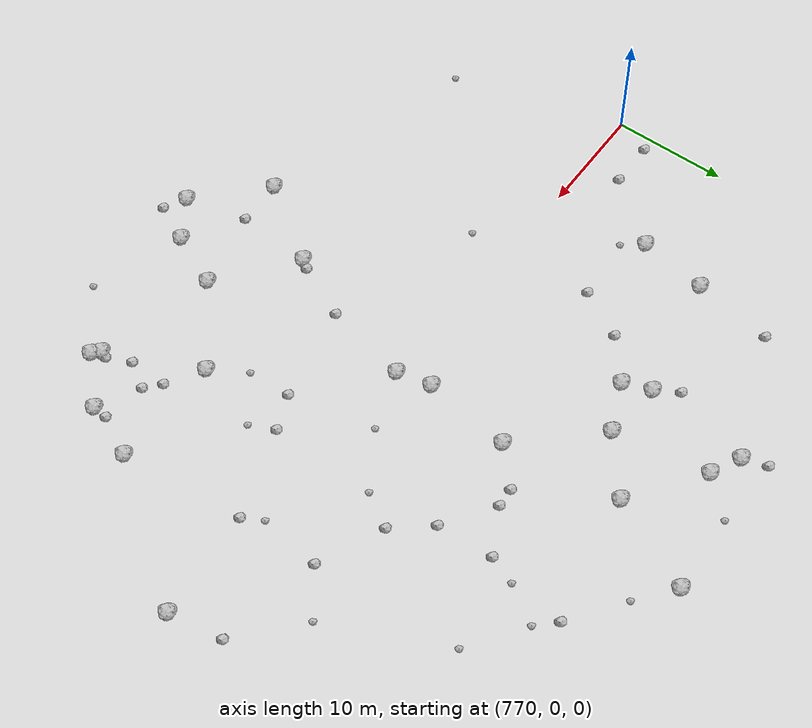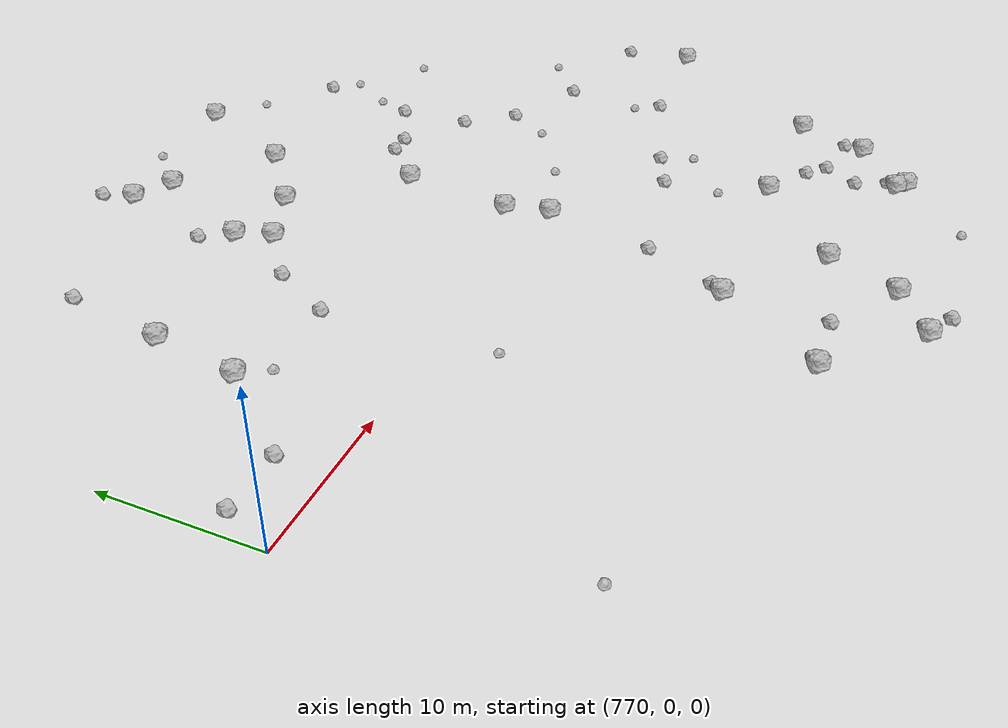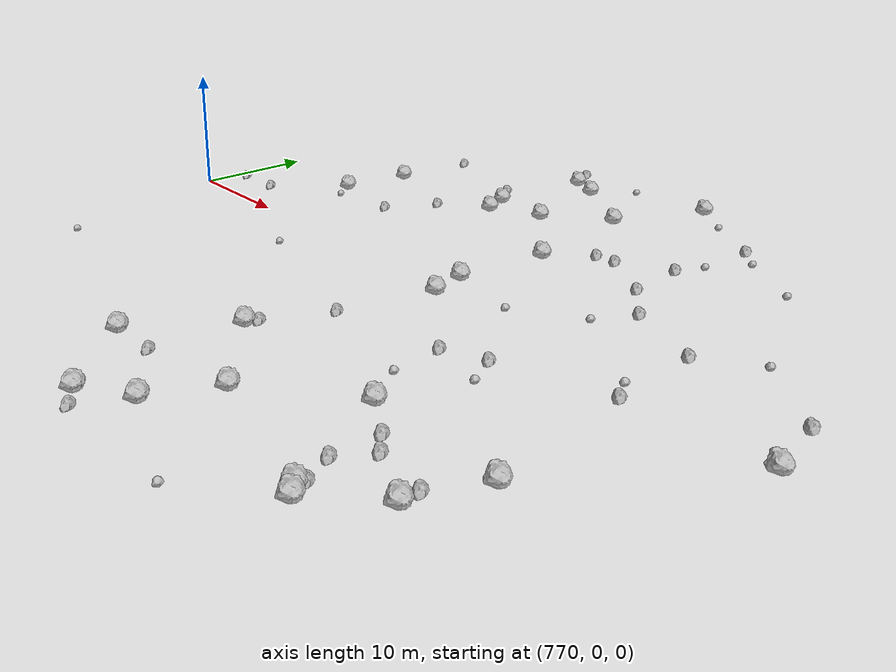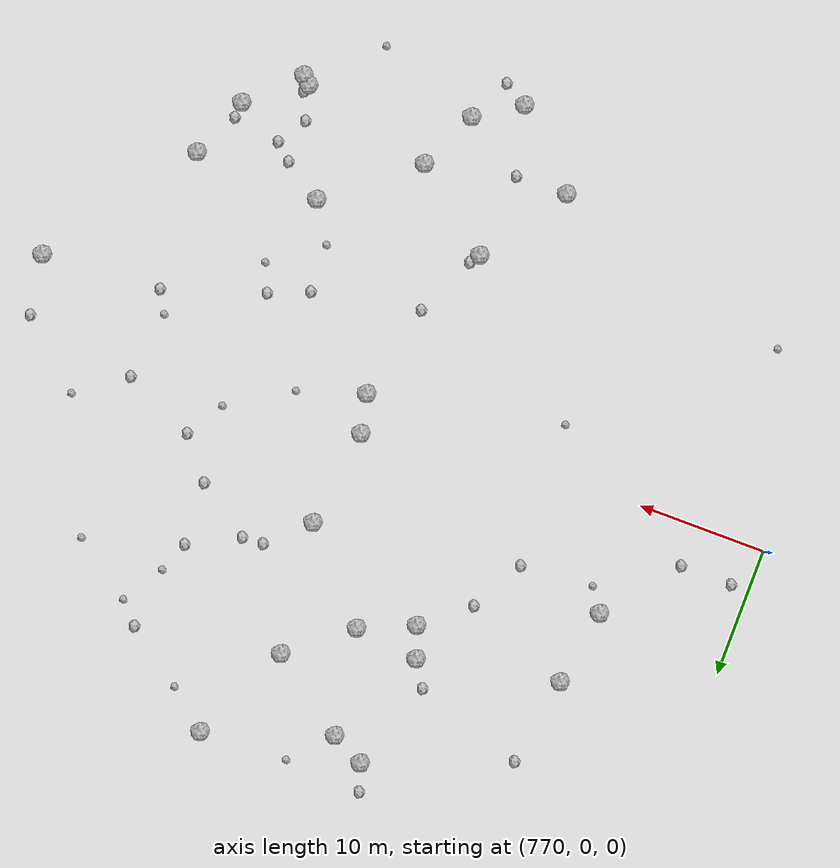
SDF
<sdf version="1.6">
 <world name="default">
  <include><uri>model://sun</uri></include>
  <model name="rock1_20_4">
   <include><uri>model://rock1</uri><pose>804.6834577866366 -18.773751615874275 0.5 0 0 0</pose></include>
  </model>
  <model name="rock1_20_5">
   <include><uri>model://rock1</uri><pose>829.6661264970816 -2.0396495676799873 0.5 0 0 0</pose></include>
  </model>
  <model name="rock1_20_6">
   <include><uri>model://rock1</uri><pose>799.0659258519454 -25.673178816625576 0.5 0 0 0</pose></include>
  </model>
  <model name="rock1_20_7">
   <include><uri>model://rock1</uri><pose>821.309565629324 -13.532190341056864 0.5 0 0 0</pose></include>
  </model>
  <model name="rock1_20_8">
   <include><uri>model://rock1</uri><pose>815.7203400717975 -21.910297261177405 0.5 0 0 0</pose></include>
  </model>
  <model name="rock1_20_9">
   <include><uri>model://rock1</uri><pose>802.6692119826708 -0.7370489539729661 0.5 0 0 0</pose></include>
  </model>
  <model name="rock1_20_10">
   <include><uri>model://rock1</uri><pose>801.8707717566934 20.174610828666076 0.5 0 0 0</pose></include>
  </model>
  <model name="rock1_20_11">
   <include><uri>model://rock1</uri><pose>797.1212844290983 16.324149091104303 0.5 0 0 0</pose></include>
  </model>
  <model name="rock1_20_12">
   <include><uri>model://rock1</uri><pose>792.8939052407616 14.519052524050437 0.5 0 0 0</pose></include>
  </model>
  <model name="rock1_20_13">
   <include><uri>model://rock1</uri><pose>803.0680856077391 9.930681445856692 0.5 0 0 0</pose></include>
  </model>
  <model name="rock1_20_14">
   <include><uri>model://rock1</uri><pose>802.5493420177905 -23.402302325145858 0.5 0 0 0</pose></include>
  </model>
  <model name="rock1_20_15">
   <include><uri>model://rock1</uri><pose>792.0458171632778 16.918782738709652 0.5 0 0 0</pose></include>
  </model>
  <model name="rock1_20_16">
   <include><uri>model://rock1</uri><pose>819.4363010921661 -18.283634922611785 0.5 0 0 0</pose></include>
  </model>
  <model name="rock1_20_17">
   <include><uri>model://rock1</uri><pose>802.0224335503791 2.2782151435221465 0.5 0 0 0</pose></include>
  </model>
  <model name="rock1_20_18">
   <include><uri>model://rock1</uri><pose>793.2656742923607 25.87179105667542 0.5 0 0 0</pose></include>
  </model>
  <model name="rock1_20_19">
   <include><uri>model://rock1</uri><pose>781.1190762183788 14.721899369333755 0.5 0 0 0</pose></include>
  </model>
  <model name="rock1_20_20">
   <include><uri>model://rock1</uri><pose>795.8185098307016 24.5844817443187 0.5 0 0 0</pose></include>
  </model>
  <model name="rock1_20_21">
   <include><uri>model://rock1</uri><pose>780.1209382874182 8.761530990640921 0.5 0 0 0</pose></include>
  </model>
  <model name="rock1_20_22">
   <include><uri>model://rock1</uri><pose>815.1034418775888 -21.314280976405072 0.5 0 0 0</pose></include>
  </model>
  <model name="rock1_20_23">
   <include><uri>model://rock1</uri><pose>793.6647525481793 -20.417212143853156 0.5 0 0 0</pose></include>
  </model>
  <model name="rock1_20_24">
   <include><uri>model://rock1</uri><pose>798.2601895823869 -13.688111562057557 0.5 0 0 0</pose></include>
  </model>
  <model name="rock1_20_25">
   <include><uri>model://rock1</uri><pose>811.4522131542992 -13.332338221070053 0.5 0 0 0</pose></include>
  </model>
  <model name="rock1_20_26">
   <include><uri>model://rock1</uri><pose>805.5595508074398 27.901159760408603 0.5 0 0 0</pose></include>
  </model>
  <model name="rock2_20_0">
   <include><uri>model://rock2</uri><pose>775.4983737985233 3.21960689254815 0.3 0 0 0</pose></include>
  </model>
  <model name="rock2_20_1">
   <include><uri>model://rock2</uri><pose>806.0495666579076 12.816058044095243 0.3 0 0 0</pose></include>
  </model>
  <model name="rock2_20_2">
   <include><uri>model://rock2</uri><pose>807.7063881100781 12.911575883591134 0.3 0 0 0</pose></include>
  </model>
  <model name="rock2_20_3">
   <include><uri>model://rock2</uri><pose>798.7638083124771 -12.87067484473161 0.3 0 0 0</pose></include>
  </model>
  <model name="rock2_20_4">
   <include><uri>model://rock2</uri><pose>787.0016669692776 7.4998253911099795 0.3 0 0 0</pose></include>
  </model>
  <model name="rock2_20_5">
   <include><uri>model://rock2</uri><pose>789.2805718306511 11.62691013585684 0.3 0 0 0</pose></include>
  </model>
  <model name="rock2_20_6">
   <include><uri>model://rock2</uri><pose>800.8977755769233 -26.739715902159272 0.3 0 0 0</pose></include>
  </model>
  <model name="rock2_20_7">
   <include><uri>model://rock2</uri><pose>812.4626460381271 -5.256388854769405 0.3 0 0 0</pose></include>
  </model>
  <model name="rock2_20_8">
   <include><uri>model://rock2</uri><pose>797.7226252933996 -20.30496148696861 0.3 0 0 0</pose></include>
  </model>
  <model name="rock2_20_9">
   <include><uri>model://rock2</uri><pose>814.463958219929 -15.268576897051734 0.3 0 0 0</pose></include>
  </model>
  <model name="rock2_20_10">
   <include><uri>model://rock2</uri><pose>782.2111740304105 21.684319487151193 0.3 0 0 0</pose></include>
  </model>
  <model name="rock2_20_11">
   <include><uri>model://rock2</uri><pose>800.9545063120835 -8.145357390628114 0.3 0 0 0</pose></include>
  </model>
  <model name="rock2_20_12">
   <include><uri>model://rock2</uri><pose>771.4111208533784 3.22124743362464 0.3 0 0 0</pose></include>
  </model>
  <model name="rock2_20_13">
   <include><uri>model://rock2</uri><pose>820.0195810677355 4.381764783799106 0.3 0 0 0</pose></include>
  </model>
  <model name="rock2_20_14">
   <include><uri>model://rock2</uri><pose>820.2674704870137 -2.6832746576848265 0.3 0 0 0</pose></include>
  </model>
  <model name="rock2_20_15">
   <include><uri>model://rock2</uri><pose>815.7467617771916 -16.418555234585245 0.3 0 0 0</pose></include>
  </model>
  <model name="rock2_20_16">
   <include><uri>model://rock2</uri><pose>792.5360966364728 28.010814488738575 0.3 0 0 0</pose></include>
  </model>
  <model name="rock2_20_17">
   <include><uri>model://rock2</uri><pose>815.2764042704636 -20.705037550360938 0.3 0 0 0</pose></include>
  </model>
  <model name="rock2_20_18">
   <include><uri>model://rock2</uri><pose>814.3396548952402 -18.65240272950903 0.3 0 0 0</pose></include>
  </model>
  <model name="rock2_20_19">
   <include><uri>model://rock2</uri><pose>814.4323906879376 6.94182468126877 0.3 0 0 0</pose></include>
  </model>
  <model name="rock2_20_20">
   <include><uri>model://rock2</uri><pose>813.0634493462384 22.151784857140804 0.3 0 0 0</pose></include>
  </model>
  <model name="rock2_20_21">
   <include><uri>model://rock2</uri><pose>811.9058311364512 10.029534108210818 0.3 0 0 0</pose></include>
  </model>
  <model name="rock2_20_22">
   <include><uri>model://rock2</uri><pose>790.7528482115189 18.92323623999568 0.3 0 0 0</pose></include>
  </model>
  <model name="rock2_20_23">
   <include><uri>model://rock2</uri><pose>828.8856302321698 2.6471327062692893 0.3 0 0 0</pose></include>
  </model>
  <model name="rock2_20_24">
   <include><uri>model://rock2</uri><pose>809.3764485247066 -6.517812010254271 0.3 0 0 0</pose></include>
  </model>
  <model name="rock2_20_25">
   <include><uri>model://rock2</uri><pose>819.5073167536609 -16.996464904474756 0.3 0 0 0</pose></include>
  </model>
  <model name="rock2_20_26">
   <include><uri>model://rock2</uri><pose>811.6469900300539 14.970246215537003 0.3 0 0 0</pose></include>
  </model>
  <model name="rock3_20_0">
   <include><uri>model://rock3</uri><pose>810.5185934056216 -26.24192246604909 0.2 0 0 0</pose></include>
  </model>
  <model name="rock3_20_1">
   <include><uri>model://rock3</uri><pose>774.3352539754096 -14.946810451203728 0.2 0 0 0</pose></include>
  </model>
  <model name="rock3_20_2">
   <include><uri>model://rock3</uri><pose>812.5590325388771 17.345782560950944 0.2 0 0 0</pose></include>
  </model>
  <model name="rock3_20_3">
   <include><uri>model://rock3</uri><pose>814.5648281998323 20.51503550074611 0.2 0 0 0</pose></include>
  </model>
  <model name="rock3_20_4">
   <include><uri>model://rock3</uri><pose>813.4198785400151 -7.451387211038558 0.2 0 0 0</pose></include>
  </model>
  <model name="rock3_20_5">
   <include><uri>model://rock3</uri><pose>819.2824220398547 -1.0067902046332762 0.2 0 0 0</pose></include>
  </model>
  <model name="rock3_20_6">
   <include><uri>model://rock3</uri><pose>808.5521557305613 25.38895085958771 0.2 0 0 0</pose></include>
  </model>
  <model name="rock3_20_7">
   <include><uri>model://rock3</uri><pose>812.641841299176 3.992874964186626 0.2 0 0 0</pose></include>
  </model>
  <model name="rock3_20_8">
   <include><uri>model://rock3</uri><pose>809.4856262400151 -10.334789970681658 0.2 0 0 0</pose></include>
  </model>
  <model name="rock3_20_9">
   <include><uri>model://rock3</uri><pose>807.7734846700444 0.9517803201337713 0.2 0 0 0</pose></include>
  </model>
  <model name="rock3_20_10">
   <include><uri>model://rock3</uri><pose>781.2686490877022 6.994082520790656 0.2 0 0 0</pose></include>
  </model>
  <model name="rock3_20_11">
   <include><uri>model://rock3</uri><pose>819.2177440323466 17.20976529617785 0.2 0 0 0</pose></include>
  </model>
  <model name="rock3_20_12">
   <include><uri>model://rock3</uri><pose>787.5346106187504 -3.836239074332674 0.2 0 0 0</pose></include>
  </model>
  <model name="rock3_20_13">
   <include><uri>model://rock3</uri><pose>823.8088604761697 7.1315017777259655 0.2 0 0 0</pose></include>
  </model>
  <model name="rock3_20_14">
   <include><uri>model://rock3</uri><pose>798.6020065704455 27.64027322319081 0.2 0 0 0</pose></include>
  </model>
 </world>
</sdf>
